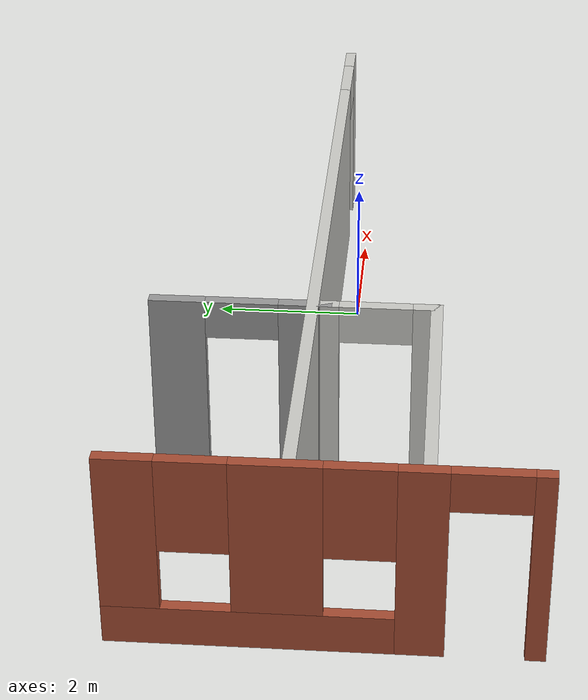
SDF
<sdf version="1.6">
 <model name="buildingMyHouse">
  <link name="Wall_34">
   <pose>-7.425 -0.022893 0 0 -0 1.5708</pose>
   <visual name="Wall_34_Visual_0">
    <pose>-2.38147 0 1.25 0 -0 0</pose>
    <geometry><box><size>0.237054 0.15 2.5</size></box></geometry>
    <material>
     <script><uri>file://media/materials/scripts/gazebo.material</uri><name>Gazebo/Bricks</name></script>
     <ambient>1 1 1 1</ambient>
     <shader type="pixel"/>
     <diffuse>1 1 1 1</diffuse>
     <specular>0.2 0.2 0.2 1</specular>
     <emissive>0 0 0 1</emissive>
    </material>
    <meta><layer>0</layer></meta>
   </visual>
   <visual name="Wall_34_Visual_1">
    <pose>-1.08246 0 1.25 0 -0 0</pose>
    <geometry><box><size>0.560967 0.15 2.5</size></box></geometry>
    <material>
     <script><uri>file://media/materials/scripts/gazebo.material</uri><name>Gazebo/Bricks</name></script>
     <ambient>1 1 1 1</ambient>
     <shader type="pixel"/>
     <diffuse>1 1 1 1</diffuse>
     <specular>0.2 0.2 0.2 1</specular>
     <emissive>0 0 0 1</emissive>
    </material>
    <meta><layer>0</layer></meta>
   </visual>
   <visual name="Wall_34_Visual_2">
    <pose>0.849011 0 0.25 0 -0 0</pose>
    <geometry><box><size>3.30198 0.15 0.5</size></box></geometry>
    <material>
     <script><uri>file://media/materials/scripts/gazebo.material</uri><name>Gazebo/Bricks</name></script>
     <ambient>1 1 1 1</ambient>
     <shader type="pixel"/>
     <diffuse>1 1 1 1</diffuse>
     <specular>0.2 0.2 0.2 1</specular>
     <emissive>0 0 0 1</emissive>
    </material>
    <meta><layer>0</layer></meta>
   </visual>
   <visual name="Wall_34_Visual_3">
    <pose>0.51168 0 1.5 0 -0 0</pose>
    <geometry><box><size>1.02732 0.15 2</size></box></geometry>
    <material>
     <script><uri>file://media/materials/scripts/gazebo.material</uri><name>Gazebo/Bricks</name></script>
     <ambient>1 1 1 1</ambient>
     <shader type="pixel"/>
     <diffuse>1 1 1 1</diffuse>
     <specular>0.2 0.2 0.2 1</specular>
     <emissive>0 0 0 1</emissive>
    </material>
    <meta><layer>0</layer></meta>
   </visual>
   <visual name="Wall_34_Visual_4">
    <pose>2.16267 0 1.5 0 -0 0</pose>
    <geometry><box><size>0.674661 0.15 2</size></box></geometry>
    <material>
     <script><uri>file://media/materials/scripts/gazebo.material</uri><name>Gazebo/Bricks</name></script>
     <ambient>1 1 1 1</ambient>
     <shader type="pixel"/>
     <diffuse>1 1 1 1</diffuse>
     <specular>0.2 0.2 0.2 1</specular>
     <emissive>0 0 0 1</emissive>
    </material>
    <meta><layer>0</layer></meta>
   </visual>
   <visual name="Wall_34_Visual_5">
    <pose>-0.401979 0 1.9 0 -0 0</pose>
    <geometry><box><size>0.8 0.15 1.2</size></box></geometry>
    <material>
     <script><uri>file://media/materials/scripts/gazebo.material</uri><name>Gazebo/Bricks</name></script>
     <ambient>1 1 1 1</ambient>
     <shader type="pixel"/>
     <diffuse>1 1 1 1</diffuse>
     <specular>0.2 0.2 0.2 1</specular>
     <emissive>0 0 0 1</emissive>
    </material>
    <meta><layer>0</layer></meta>
   </visual>
   <visual name="Wall_34_Visual_6">
    <pose>1.42534 0 1.9 0 -0 0</pose>
    <geometry><box><size>0.8 0.15 1.2</size></box></geometry>
    <material>
     <script><uri>file://media/materials/scripts/gazebo.material</uri><name>Gazebo/Bricks</name></script>
     <ambient>1 1 1 1</ambient>
     <shader type="pixel"/>
     <diffuse>1 1 1 1</diffuse>
     <specular>0.2 0.2 0.2 1</specular>
     <emissive>0 0 0 1</emissive>
    </material>
    <meta><layer>0</layer></meta>
   </visual>
   <visual name="Wall_34_Visual_7">
    <pose>-1.81295 0 2.25 0 -0 0</pose>
    <geometry><box><size>0.9 0.15 0.5</size></box></geometry>
    <material>
     <script><uri>file://media/materials/scripts/gazebo.material</uri><name>Gazebo/Bricks</name></script>
     <ambient>1 1 1 1</ambient>
     <shader type="pixel"/>
     <diffuse>1 1 1 1</diffuse>
     <specular>0.2 0.2 0.2 1</specular>
     <emissive>0 0 0 1</emissive>
    </material>
    <meta><layer>0</layer></meta>
   </visual>
   <collision name="Wall_34_Collision_0">
    <pose>-2.38147 0 1.25 0 -0 0</pose>
    <geometry><box><size>0.237054 0.15 2.5</size></box></geometry>
    <surface>
     <friction>
      <ode><mu>1</mu><mu2>1</mu2><fdir1>0 0 0</fdir1><slip1>0</slip1><slip2>0</slip2></ode>
      <torsional>
       <coefficient>1</coefficient>
       <patch_radius>0</patch_radius>
       <surface_radius>0</surface_radius>
       <use_patch_radius>1</use_patch_radius>
       <ode><slip>0</slip></ode>
      </torsional>
     </friction>
     <bounce><restitution_coefficient>0</restitution_coefficient><threshold>1e+06</threshold></bounce>
     <contact>
      <collide_without_contact>0</collide_without_contact>
      <collide_without_contact_bitmask>1</collide_without_contact_bitmask>
      <collide_bitmask>1</collide_bitmask>
      <ode>
       <soft_cfm>0</soft_cfm>
       <soft_erp>0.2</soft_erp>
       <kp>1e+13</kp>
       <kd>1</kd>
       <max_vel>0.01</max_vel>
       <min_depth>0</min_depth>
      </ode>
      <bullet>
       <split_impulse>1</split_impulse>
       <split_impulse_penetration_threshold>-0.01</split_impulse_penetration_threshold>
       <soft_cfm>0</soft_cfm>
       <soft_erp>0.2</soft_erp>
       <kp>1e+13</kp>
       <kd>1</kd>
      </bullet>
     </contact>
    </surface>
   </collision>
   <collision name="Wall_34_Collision_1">
    <pose>-1.08246 0 1.25 0 -0 0</pose>
    <geometry><box><size>0.560967 0.15 2.5</size></box></geometry>
    <surface>
     <friction>
      <ode><mu>1</mu><mu2>1</mu2><fdir1>0 0 0</fdir1><slip1>0</slip1><slip2>0</slip2></ode>
      <torsional>
       <coefficient>1</coefficient>
       <patch_radius>0</patch_radius>
       <surface_radius>0</surface_radius>
       <use_patch_radius>1</use_patch_radius>
       <ode><slip>0</slip></ode>
      </torsional>
     </friction>
     <bounce><restitution_coefficient>0</restitution_coefficient><threshold>1e+06</threshold></bounce>
     <contact>
      <collide_without_contact>0</collide_without_contact>
      <collide_without_contact_bitmask>1</collide_without_contact_bitmask>
      <collide_bitmask>1</collide_bitmask>
      <ode>
       <soft_cfm>0</soft_cfm>
       <soft_erp>0.2</soft_erp>
       <kp>1e+13</kp>
       <kd>1</kd>
       <max_vel>0.01</max_vel>
       <min_depth>0</min_depth>
      </ode>
      <bullet>
       <split_impulse>1</split_impulse>
       <split_impulse_penetration_threshold>-0.01</split_impulse_penetration_threshold>
       <soft_cfm>0</soft_cfm>
       <soft_erp>0.2</soft_erp>
       <kp>1e+13</kp>
       <kd>1</kd>
      </bullet>
     </contact>
    </surface>
   </collision>
   <collision name="Wall_34_Collision_2">
    <pose>0.849011 0 0.25 0 -0 0</pose>
    <geometry><box><size>3.30198 0.15 0.5</size></box></geometry>
    <surface>
     <friction>
      <ode><mu>1</mu><mu2>1</mu2><fdir1>0 0 0</fdir1><slip1>0</slip1><slip2>0</slip2></ode>
      <torsional>
       <coefficient>1</coefficient>
       <patch_radius>0</patch_radius>
       <surface_radius>0</surface_radius>
       <use_patch_radius>1</use_patch_radius>
       <ode><slip>0</slip></ode>
      </torsional>
     </friction>
     <bounce><restitution_coefficient>0</restitution_coefficient><threshold>1e+06</threshold></bounce>
     <contact>
      <collide_without_contact>0</collide_without_contact>
      <collide_without_contact_bitmask>1</collide_without_contact_bitmask>
      <collide_bitmask>1</collide_bitmask>
      <ode>
       <soft_cfm>0</soft_cfm>
       <soft_erp>0.2</soft_erp>
       <kp>1e+13</kp>
       <kd>1</kd>
       <max_vel>0.01</max_vel>
       <min_depth>0</min_depth>
      </ode>
      <bullet>
       <split_impulse>1</split_impulse>
       <split_impulse_penetration_threshold>-0.01</split_impulse_penetration_threshold>
       <soft_cfm>0</soft_cfm>
       <soft_erp>0.2</soft_erp>
       <kp>1e+13</kp>
       <kd>1</kd>
      </bullet>
     </contact>
    </surface>
   </collision>
   <collision name="Wall_34_Collision_3">
    <pose>0.51168 0 1.5 0 -0 0</pose>
    <geometry><box><size>1.02732 0.15 2</size></box></geometry>
    <surface>
     <friction>
      <ode><mu>1</mu><mu2>1</mu2><fdir1>0 0 0</fdir1><slip1>0</slip1><slip2>0</slip2></ode>
      <torsional>
       <coefficient>1</coefficient>
       <patch_radius>0</patch_radius>
       <surface_radius>0</surface_radius>
       <use_patch_radius>1</use_patch_radius>
       <ode><slip>0</slip></ode>
      </torsional>
     </friction>
     <bounce><restitution_coefficient>0</restitution_coefficient><threshold>1e+06</threshold></bounce>
     <contact>
      <collide_without_contact>0</collide_without_contact>
      <collide_without_contact_bitmask>1</collide_without_contact_bitmask>
      <collide_bitmask>1</collide_bitmask>
      <ode>
       <soft_cfm>0</soft_cfm>
       <soft_erp>0.2</soft_erp>
       <kp>1e+13</kp>
       <kd>1</kd>
       <max_vel>0.01</max_vel>
       <min_depth>0</min_depth>
      </ode>
      <bullet>
       <split_impulse>1</split_impulse>
       <split_impulse_penetration_threshold>-0.01</split_impulse_penetration_threshold>
       <soft_cfm>0</soft_cfm>
       <soft_erp>0.2</soft_erp>
       <kp>1e+13</kp>
       <kd>1</kd>
      </bullet>
     </contact>
    </surface>
   </collision>
   <collision name="Wall_34_Collision_4">
    <pose>2.16267 0 1.5 0 -0 0</pose>
    <geometry><box><size>0.674661 0.15 2</size></box></geometry>
    <surface>
     <friction>
      <ode><mu>1</mu><mu2>1</mu2><fdir1>0 0 0</fdir1><slip1>0</slip1><slip2>0</slip2></ode>
      <torsional>
       <coefficient>1</coefficient>
       <patch_radius>0</patch_radius>
       <surface_radius>0</surface_radius>
       <use_patch_radius>1</use_patch_radius>
       <ode><slip>0</slip></ode>
      </torsional>
     </friction>
     <bounce><restitution_coefficient>0</restitution_coefficient><threshold>1e+06</threshold></bounce>
     <contact>
      <collide_without_contact>0</collide_without_contact>
      <collide_without_contact_bitmask>1</collide_without_contact_bitmask>
      <collide_bitmask>1</collide_bitmask>
      <ode>
       <soft_cfm>0</soft_cfm>
       <soft_erp>0.2</soft_erp>
       <kp>1e+13</kp>
       <kd>1</kd>
       <max_vel>0.01</max_vel>
       <min_depth>0</min_depth>
      </ode>
      <bullet>
       <split_impulse>1</split_impulse>
       <split_impulse_penetration_threshold>-0.01</split_impulse_penetration_threshold>
       <soft_cfm>0</soft_cfm>
       <soft_erp>0.2</soft_erp>
       <kp>1e+13</kp>
       <kd>1</kd>
      </bullet>
     </contact>
    </surface>
   </collision>
   <collision name="Wall_34_Collision_5">
    <pose>-0.401979 0 1.9 0 -0 0</pose>
    <geometry><box><size>0.8 0.15 1.2</size></box></geometry>
    <surface>
     <friction>
      <ode><mu>1</mu><mu2>1</mu2><fdir1>0 0 0</fdir1><slip1>0</slip1><slip2>0</slip2></ode>
      <torsional>
       <coefficient>1</coefficient>
       <patch_radius>0</patch_radius>
       <surface_radius>0</surface_radius>
       <use_patch_radius>1</use_patch_radius>
       <ode><slip>0</slip></ode>
      </torsional>
     </friction>
     <bounce><restitution_coefficient>0</restitution_coefficient><threshold>1e+06</threshold></bounce>
     <contact>
      <collide_without_contact>0</collide_without_contact>
      <collide_without_contact_bitmask>1</collide_without_contact_bitmask>
      <collide_bitmask>1</collide_bitmask>
      <ode>
       <soft_cfm>0</soft_cfm>
       <soft_erp>0.2</soft_erp>
       <kp>1e+13</kp>
       <kd>1</kd>
       <max_vel>0.01</max_vel>
       <min_depth>0</min_depth>
      </ode>
      <bullet>
       <split_impulse>1</split_impulse>
       <split_impulse_penetration_threshold>-0.01</split_impulse_penetration_threshold>
       <soft_cfm>0</soft_cfm>
       <soft_erp>0.2</soft_erp>
       <kp>1e+13</kp>
       <kd>1</kd>
      </bullet>
     </contact>
    </surface>
   </collision>
   <collision name="Wall_34_Collision_6">
    <pose>1.42534 0 1.9 0 -0 0</pose>
    <geometry><box><size>0.8 0.15 1.2</size></box></geometry>
    <surface>
     <friction>
      <ode><mu>1</mu><mu2>1</mu2><fdir1>0 0 0</fdir1><slip1>0</slip1><slip2>0</slip2></ode>
      <torsional>
       <coefficient>1</coefficient>
       <patch_radius>0</patch_radius>
       <surface_radius>0</surface_radius>
       <use_patch_radius>1</use_patch_radius>
       <ode><slip>0</slip></ode>
      </torsional>
     </friction>
     <bounce><restitution_coefficient>0</restitution_coefficient><threshold>1e+06</threshold></bounce>
     <contact>
      <collide_without_contact>0</collide_without_contact>
      <collide_without_contact_bitmask>1</collide_without_contact_bitmask>
      <collide_bitmask>1</collide_bitmask>
      <ode>
       <soft_cfm>0</soft_cfm>
       <soft_erp>0.2</soft_erp>
       <kp>1e+13</kp>
       <kd>1</kd>
       <max_vel>0.01</max_vel>
       <min_depth>0</min_depth>
      </ode>
      <bullet>
       <split_impulse>1</split_impulse>
       <split_impulse_penetration_threshold>-0.01</split_impulse_penetration_threshold>
       <soft_cfm>0</soft_cfm>
       <soft_erp>0.2</soft_erp>
       <kp>1e+13</kp>
       <kd>1</kd>
      </bullet>
     </contact>
    </surface>
   </collision>
   <collision name="Wall_34_Collision_7">
    <pose>-1.81295 0 2.25 0 -0 0</pose>
    <geometry><box><size>0.9 0.15 0.5</size></box></geometry>
    <surface>
     <friction>
      <ode><mu>1</mu><mu2>1</mu2><fdir1>0 0 0</fdir1><slip1>0</slip1><slip2>0</slip2></ode>
      <torsional>
       <coefficient>1</coefficient>
       <patch_radius>0</patch_radius>
       <surface_radius>0</surface_radius>
       <use_patch_radius>1</use_patch_radius>
       <ode><slip>0</slip></ode>
      </torsional>
     </friction>
     <bounce><restitution_coefficient>0</restitution_coefficient><threshold>1e+06</threshold></bounce>
     <contact>
      <collide_without_contact>0</collide_without_contact>
      <collide_without_contact_bitmask>1</collide_without_contact_bitmask>
      <collide_bitmask>1</collide_bitmask>
      <ode>
       <soft_cfm>0</soft_cfm>
       <soft_erp>0.2</soft_erp>
       <kp>1e+13</kp>
       <kd>1</kd>
       <max_vel>0.01</max_vel>
       <min_depth>0</min_depth>
      </ode>
      <bullet>
       <split_impulse>1</split_impulse>
       <split_impulse_penetration_threshold>-0.01</split_impulse_penetration_threshold>
       <soft_cfm>0</soft_cfm>
       <soft_erp>0.2</soft_erp>
       <kp>1e+13</kp>
       <kd>1</kd>
      </bullet>
     </contact>
    </surface>
   </collision>
  </link>
  <link name="Wall_40">
   <pose>-1.80848 0.347893 0 0 -0 0</pose>
   <visual name="Wall_40_Visual_0">
    <pose>-0.709013 0 1.25 0 -0 0</pose>
    <geometry><box><size>9.83197 0.15 2.5</size></box></geometry>
    <material>
     <script><uri>file://media/materials/scripts/gazebo.material</uri><name>Gazebo/CeilingTiled</name></script>
     <ambient>1 1 1 1</ambient>
     <shader type="pixel"/>
     <diffuse>1 1 1 1</diffuse>
     <specular>0 0 0 1</specular>
     <emissive>0 0 0 1</emissive>
    </material>
    <meta><layer>0</layer></meta>
   </visual>
   <visual name="Wall_40_Visual_1">
    <pose>5.36599 0 1.25 0 -0 0</pose>
    <geometry><box><size>0.518027 0.15 2.5</size></box></geometry>
    <material>
     <script><uri>file://media/materials/scripts/gazebo.material</uri><name>Gazebo/CeilingTiled</name></script>
     <ambient>1 1 1 1</ambient>
     <shader type="pixel"/>
     <diffuse>1 1 1 1</diffuse>
     <specular>0 0 0 1</specular>
     <emissive>0 0 0 1</emissive>
    </material>
    <meta><layer>0</layer></meta>
   </visual>
   <visual name="Wall_40_Visual_2">
    <pose>4.65697 0 2.25 0 -0 0</pose>
    <geometry><box><size>0.9 0.15 0.5</size></box></geometry>
    <material>
     <script><uri>file://media/materials/scripts/gazebo.material</uri><name>Gazebo/CeilingTiled</name></script>
     <ambient>1 1 1 1</ambient>
     <shader type="pixel"/>
     <diffuse>1 1 1 1</diffuse>
     <specular>0 0 0 1</specular>
     <emissive>0 0 0 1</emissive>
    </material>
    <meta><layer>0</layer></meta>
   </visual>
   <collision name="Wall_40_Collision_0">
    <pose>-0.709013 0 1.25 0 -0 0</pose>
    <geometry><box><size>9.83197 0.15 2.5</size></box></geometry>
    <surface>
     <friction>
      <ode><mu>1</mu><mu2>1</mu2><fdir1>0 0 0</fdir1><slip1>0</slip1><slip2>0</slip2></ode>
      <torsional>
       <coefficient>1</coefficient>
       <patch_radius>0</patch_radius>
       <surface_radius>0</surface_radius>
       <use_patch_radius>1</use_patch_radius>
       <ode><slip>0</slip></ode>
      </torsional>
     </friction>
     <bounce><restitution_coefficient>0</restitution_coefficient><threshold>1e+06</threshold></bounce>
     <contact>
      <collide_without_contact>0</collide_without_contact>
      <collide_without_contact_bitmask>1</collide_without_contact_bitmask>
      <collide_bitmask>1</collide_bitmask>
      <ode>
       <soft_cfm>0</soft_cfm>
       <soft_erp>0.2</soft_erp>
       <kp>1e+13</kp>
       <kd>1</kd>
       <max_vel>0.01</max_vel>
       <min_depth>0</min_depth>
      </ode>
      <bullet>
       <split_impulse>1</split_impulse>
       <split_impulse_penetration_threshold>-0.01</split_impulse_penetration_threshold>
       <soft_cfm>0</soft_cfm>
       <soft_erp>0.2</soft_erp>
       <kp>1e+13</kp>
       <kd>1</kd>
      </bullet>
     </contact>
    </surface>
   </collision>
   <collision name="Wall_40_Collision_1">
    <pose>5.36599 0 1.25 0 -0 0</pose>
    <geometry><box><size>0.518027 0.15 2.5</size></box></geometry>
    <surface>
     <friction>
      <ode><mu>1</mu><mu2>1</mu2><fdir1>0 0 0</fdir1><slip1>0</slip1><slip2>0</slip2></ode>
      <torsional>
       <coefficient>1</coefficient>
       <patch_radius>0</patch_radius>
       <surface_radius>0</surface_radius>
       <use_patch_radius>1</use_patch_radius>
       <ode><slip>0</slip></ode>
      </torsional>
     </friction>
     <bounce><restitution_coefficient>0</restitution_coefficient><threshold>1e+06</threshold></bounce>
     <contact>
      <collide_without_contact>0</collide_without_contact>
      <collide_without_contact_bitmask>1</collide_without_contact_bitmask>
      <collide_bitmask>1</collide_bitmask>
      <ode>
       <soft_cfm>0</soft_cfm>
       <soft_erp>0.2</soft_erp>
       <kp>1e+13</kp>
       <kd>1</kd>
       <max_vel>0.01</max_vel>
       <min_depth>0</min_depth>
      </ode>
      <bullet>
       <split_impulse>1</split_impulse>
       <split_impulse_penetration_threshold>-0.01</split_impulse_penetration_threshold>
       <soft_cfm>0</soft_cfm>
       <soft_erp>0.2</soft_erp>
       <kp>1e+13</kp>
       <kd>1</kd>
      </bullet>
     </contact>
    </surface>
   </collision>
   <collision name="Wall_40_Collision_2">
    <pose>4.65697 0 2.25 0 -0 0</pose>
    <geometry><box><size>0.9 0.15 0.5</size></box></geometry>
    <surface>
     <friction>
      <ode><mu>1</mu><mu2>1</mu2><fdir1>0 0 0</fdir1><slip1>0</slip1><slip2>0</slip2></ode>
      <torsional>
       <coefficient>1</coefficient>
       <patch_radius>0</patch_radius>
       <surface_radius>0</surface_radius>
       <use_patch_radius>1</use_patch_radius>
       <ode><slip>0</slip></ode>
      </torsional>
     </friction>
     <bounce><restitution_coefficient>0</restitution_coefficient><threshold>1e+06</threshold></bounce>
     <contact>
      <collide_without_contact>0</collide_without_contact>
      <collide_without_contact_bitmask>1</collide_without_contact_bitmask>
      <collide_bitmask>1</collide_bitmask>
      <ode>
       <soft_cfm>0</soft_cfm>
       <soft_erp>0.2</soft_erp>
       <kp>1e+13</kp>
       <kd>1</kd>
       <max_vel>0.01</max_vel>
       <min_depth>0</min_depth>
      </ode>
      <bullet>
       <split_impulse>1</split_impulse>
       <split_impulse_penetration_threshold>-0.01</split_impulse_penetration_threshold>
       <soft_cfm>0</soft_cfm>
       <soft_erp>0.2</soft_erp>
       <kp>1e+13</kp>
       <kd>1</kd>
      </bullet>
     </contact>
    </surface>
   </collision>
  </link>
  <link name="Wall_45">
   <pose>-5.70023 -1.16505 0 0 -0 0</pose>
   <visual name="Wall_45_Visual">
    <pose>0 0 1.25 0 -0 0</pose>
    <geometry><box><size>3.5 0.15 2.5</size></box></geometry>
    <material>
     <script><uri>file://media/materials/scripts/gazebo.material</uri><name>Gazebo/CeilingTiled</name></script>
     <ambient>1 1 1 1</ambient>
     <shader type="pixel"/>
     <diffuse>1 1 1 1</diffuse>
     <specular>0 0 0 1</specular>
     <emissive>0 0 0 1</emissive>
    </material>
    <meta><layer>0</layer></meta>
   </visual>
   <collision name="Wall_45_Collision">
    <pose>0 0 1.25 0 -0 0</pose>
    <geometry><box><size>3.5 0.15 2.5</size></box></geometry>
    <surface>
     <friction>
      <ode><mu>1</mu><mu2>1</mu2><fdir1>0 0 0</fdir1><slip1>0</slip1><slip2>0</slip2></ode>
      <torsional>
       <coefficient>1</coefficient>
       <patch_radius>0</patch_radius>
       <surface_radius>0</surface_radius>
       <use_patch_radius>1</use_patch_radius>
       <ode><slip>0</slip></ode>
      </torsional>
     </friction>
     <bounce><restitution_coefficient>0</restitution_coefficient><threshold>1e+06</threshold></bounce>
     <contact>
      <collide_without_contact>0</collide_without_contact>
      <collide_without_contact_bitmask>1</collide_without_contact_bitmask>
      <collide_bitmask>1</collide_bitmask>
      <ode>
       <soft_cfm>0</soft_cfm>
       <soft_erp>0.2</soft_erp>
       <kp>1e+13</kp>
       <kd>1</kd>
       <max_vel>0.01</max_vel>
       <min_depth>0</min_depth>
      </ode>
      <bullet>
       <split_impulse>1</split_impulse>
       <split_impulse_penetration_threshold>-0.01</split_impulse_penetration_threshold>
       <soft_cfm>0</soft_cfm>
       <soft_erp>0.2</soft_erp>
       <kp>1e+13</kp>
       <kd>1</kd>
      </bullet>
     </contact>
    </surface>
   </collision>
  </link>
  <link name="Wall_46">
   <pose>-4.02523 -0.490052 0 0 -0 1.5708</pose>
   <inertial>
    <mass>1</mass>
    <inertia><ixx>1</ixx><ixy>0</ixy><ixz>0</ixz><iyy>1</iyy><iyz>0</iyz><izz>1</izz></inertia>
   </inertial>
   <visual name="Wall_46_Visual_0">
    <pose>-0.56741 0 1.25 0 -0 0</pose>
    <geometry><box><size>0.365179 0.15 2.5</size></box></geometry>
    <material>
     <script><uri>file://media/materials/scripts/gazebo.material</uri><name>Gazebo/CeilingTiled</name></script>
     <ambient>0.9 0 0 1</ambient>
     <shader type="pixel"><normal_map>__default__</normal_map></shader>
     <diffuse>0.9 0 0 1</diffuse>
     <specular>0.9 0 0 1</specular>
     <emissive>0 0 0 1</emissive>
    </material>
    <meta><layer>0</layer></meta>
   </visual>
   <visual name="Wall_46_Visual_1">
    <pose>0.63259 0 1.25 0 -0 0</pose>
    <geometry><box><size>0.234821 0.15 2.5</size></box></geometry>
    <material>
     <script><uri>file://media/materials/scripts/gazebo.material</uri><name>Gazebo/CeilingTiled</name></script>
     <ambient>0.9 0 0 1</ambient>
     <shader type="pixel"><normal_map>__default__</normal_map></shader>
     <diffuse>0.9 0 0 1</diffuse>
     <specular>0 0 0 1</specular>
     <emissive>0 0 0 1</emissive>
    </material>
    <meta><layer>0</layer></meta>
   </visual>
   <visual name="Wall_46_Visual_2">
    <pose>0.065179 0 2.25 0 -0 0</pose>
    <geometry><box><size>0.9 0.15 0.5</size></box></geometry>
    <material>
     <script><uri>file://media/materials/scripts/gazebo.material</uri><name>Gazebo/CeilingTiled</name></script>
     <ambient>0.9 0 0 1</ambient>
     <shader type="pixel"><normal_map>__default__</normal_map></shader>
     <diffuse>0.9 0 0 1</diffuse>
     <specular>0 0 0 1</specular>
     <emissive>0 0 0 1</emissive>
    </material>
    <meta><layer>0</layer></meta>
   </visual>
   <collision name="Wall_46_Collision_2">
    <pose>0.065179 0 2.25 0 -0 0</pose>
    <geometry><box><size>0.9 0.15 0.5</size></box></geometry>
    <surface>
     <friction>
      <ode><mu>1</mu><mu2>1</mu2><fdir1>0 0 0</fdir1><slip1>0</slip1><slip2>0</slip2></ode>
      <torsional>
       <coefficient>1</coefficient>
       <patch_radius>0</patch_radius>
       <surface_radius>0</surface_radius>
       <use_patch_radius>1</use_patch_radius>
       <ode><slip>0</slip></ode>
      </torsional>
     </friction>
     <bounce><restitution_coefficient>0</restitution_coefficient><threshold>1e+06</threshold></bounce>
     <contact>
      <collide_without_contact>0</collide_without_contact>
      <collide_without_contact_bitmask>1</collide_without_contact_bitmask>
      <collide_bitmask>1</collide_bitmask>
      <ode>
       <soft_cfm>0</soft_cfm>
       <soft_erp>0.2</soft_erp>
       <kp>1e+13</kp>
       <kd>1</kd>
       <max_vel>0.01</max_vel>
       <min_depth>0</min_depth>
      </ode>
      <bullet>
       <split_impulse>1</split_impulse>
       <split_impulse_penetration_threshold>-0.01</split_impulse_penetration_threshold>
       <soft_cfm>0</soft_cfm>
       <soft_erp>0.2</soft_erp>
       <kp>1e+13</kp>
       <kd>1</kd>
      </bullet>
     </contact>
    </surface>
   </collision>
   <collision name="Wall_46_Collision_0">
    <pose>-0.56741 0 1.25 0 -0 0</pose>
    <geometry><box><size>0.365179 0.15 2.5</size></box></geometry>
    <surface>
     <friction>
      <ode><mu>1</mu><mu2>1</mu2><fdir1>0 0 0</fdir1><slip1>0</slip1><slip2>0</slip2></ode>
      <torsional>
       <coefficient>1</coefficient>
       <patch_radius>0</patch_radius>
       <surface_radius>0</surface_radius>
       <use_patch_radius>1</use_patch_radius>
       <ode><slip>0</slip></ode>
      </torsional>
     </friction>
     <bounce><restitution_coefficient>0</restitution_coefficient><threshold>1e+06</threshold></bounce>
     <contact>
      <collide_without_contact>0</collide_without_contact>
      <collide_without_contact_bitmask>1</collide_without_contact_bitmask>
      <collide_bitmask>1</collide_bitmask>
      <ode>
       <soft_cfm>0</soft_cfm>
       <soft_erp>0.2</soft_erp>
       <kp>1e+13</kp>
       <kd>1</kd>
       <max_vel>0.01</max_vel>
       <min_depth>0</min_depth>
      </ode>
      <bullet>
       <split_impulse>1</split_impulse>
       <split_impulse_penetration_threshold>-0.01</split_impulse_penetration_threshold>
       <soft_cfm>0</soft_cfm>
       <soft_erp>0.2</soft_erp>
       <kp>1e+13</kp>
       <kd>1</kd>
      </bullet>
     </contact>
    </surface>
   </collision>
   <collision name="Wall_46_Collision_1">
    <pose>0.63259 0 1.25 0 -0 0</pose>
    <geometry><box><size>0.234821 0.15 2.5</size></box></geometry>
    <surface>
     <friction>
      <ode><mu>1</mu><mu2>1</mu2><fdir1>0 0 0</fdir1><slip1>0</slip1><slip2>0</slip2></ode>
      <torsional>
       <coefficient>1</coefficient>
       <patch_radius>0</patch_radius>
       <surface_radius>0</surface_radius>
       <use_patch_radius>1</use_patch_radius>
       <ode><slip>0</slip></ode>
      </torsional>
     </friction>
     <bounce><restitution_coefficient>0</restitution_coefficient><threshold>1e+06</threshold></bounce>
     <contact>
      <collide_without_contact>0</collide_without_contact>
      <collide_without_contact_bitmask>1</collide_without_contact_bitmask>
      <collide_bitmask>1</collide_bitmask>
      <ode>
       <soft_cfm>0</soft_cfm>
       <soft_erp>0.2</soft_erp>
       <kp>1e+13</kp>
       <kd>1</kd>
       <max_vel>0.01</max_vel>
       <min_depth>0</min_depth>
      </ode>
      <bullet>
       <split_impulse>1</split_impulse>
       <split_impulse_penetration_threshold>-0.01</split_impulse_penetration_threshold>
       <soft_cfm>0</soft_cfm>
       <soft_erp>0.2</soft_erp>
       <kp>1e+13</kp>
       <kd>1</kd>
      </bullet>
     </contact>
    </surface>
   </collision>
  </link>
  <link name="Wall_47">
   <pose>-4.02523 1.23495 0 0 -0 1.5708</pose>
   <visual name="Wall_47_Visual_0">
    <pose>-0.796274 0 1.25 0 -0 0</pose>
    <geometry><box><size>0.657453 0.15 2.5</size></box></geometry>
    <material>
     <script><uri>file://media/materials/scripts/gazebo.material</uri><name>Gazebo/Grey</name></script>
     <ambient>1 1 1 1</ambient>
     <shader type="pixel"/>
     <diffuse>0.7 0.7 0.7 1</diffuse>
     <specular>0.01 0.01 0.01 1</specular>
     <emissive>0 0 0 1</emissive>
    </material>
    <meta><layer>0</layer></meta>
   </visual>
   <visual name="Wall_47_Visual_1">
    <pose>0.778726 0 1.25 0 -0 0</pose>
    <geometry><box><size>0.692547 0.15 2.5</size></box></geometry>
    <material>
     <script><uri>file://media/materials/scripts/gazebo.material</uri><name>Gazebo/Grey</name></script>
     <ambient>1 1 1 1</ambient>
     <shader type="pixel"/>
     <diffuse>0.7 0.7 0.7 1</diffuse>
     <specular>0.01 0.01 0.01 1</specular>
     <emissive>0 0 0 1</emissive>
    </material>
    <meta><layer>0</layer></meta>
   </visual>
   <visual name="Wall_47_Visual_2">
    <pose>-0.017547 0 2.25 0 -0 0</pose>
    <geometry><box><size>0.9 0.15 0.5</size></box></geometry>
    <material>
     <script><uri>file://media/materials/scripts/gazebo.material</uri><name>Gazebo/Grey</name></script>
     <ambient>1 1 1 1</ambient>
     <shader type="pixel"/>
     <diffuse>0.7 0.7 0.7 1</diffuse>
     <specular>0.01 0.01 0.01 1</specular>
     <emissive>0 0 0 1</emissive>
    </material>
    <meta><layer>0</layer></meta>
   </visual>
   <collision name="Wall_47_Collision_0">
    <pose>-0.796274 0 1.25 0 -0 0</pose>
    <geometry><box><size>0.657453 0.15 2.5</size></box></geometry>
    <surface>
     <friction>
      <ode><mu>1</mu><mu2>1</mu2><fdir1>0 0 0</fdir1><slip1>0</slip1><slip2>0</slip2></ode>
      <torsional>
       <coefficient>1</coefficient>
       <patch_radius>0</patch_radius>
       <surface_radius>0</surface_radius>
       <use_patch_radius>1</use_patch_radius>
       <ode><slip>0</slip></ode>
      </torsional>
     </friction>
     <bounce><restitution_coefficient>0</restitution_coefficient><threshold>1e+06</threshold></bounce>
     <contact>
      <collide_without_contact>0</collide_without_contact>
      <collide_without_contact_bitmask>1</collide_without_contact_bitmask>
      <collide_bitmask>1</collide_bitmask>
      <ode>
       <soft_cfm>0</soft_cfm>
       <soft_erp>0.2</soft_erp>
       <kp>1e+13</kp>
       <kd>1</kd>
       <max_vel>0.01</max_vel>
       <min_depth>0</min_depth>
      </ode>
      <bullet>
       <split_impulse>1</split_impulse>
       <split_impulse_penetration_threshold>-0.01</split_impulse_penetration_threshold>
       <soft_cfm>0</soft_cfm>
       <soft_erp>0.2</soft_erp>
       <kp>1e+13</kp>
       <kd>1</kd>
      </bullet>
     </contact>
    </surface>
   </collision>
   <collision name="Wall_47_Collision_1">
    <pose>0.778726 0 1.25 0 -0 0</pose>
    <geometry><box><size>0.692547 0.15 2.5</size></box></geometry>
    <surface>
     <friction>
      <ode><mu>1</mu><mu2>1</mu2><fdir1>0 0 0</fdir1><slip1>0</slip1><slip2>0</slip2></ode>
      <torsional>
       <coefficient>1</coefficient>
       <patch_radius>0</patch_radius>
       <surface_radius>0</surface_radius>
       <use_patch_radius>1</use_patch_radius>
       <ode><slip>0</slip></ode>
      </torsional>
     </friction>
     <bounce><restitution_coefficient>0</restitution_coefficient><threshold>1e+06</threshold></bounce>
     <contact>
      <collide_without_contact>0</collide_without_contact>
      <collide_without_contact_bitmask>1</collide_without_contact_bitmask>
      <collide_bitmask>1</collide_bitmask>
      <ode>
       <soft_cfm>0</soft_cfm>
       <soft_erp>0.2</soft_erp>
       <kp>1e+13</kp>
       <kd>1</kd>
       <max_vel>0.01</max_vel>
       <min_depth>0</min_depth>
      </ode>
      <bullet>
       <split_impulse>1</split_impulse>
       <split_impulse_penetration_threshold>-0.01</split_impulse_penetration_threshold>
       <soft_cfm>0</soft_cfm>
       <soft_erp>0.2</soft_erp>
       <kp>1e+13</kp>
       <kd>1</kd>
      </bullet>
     </contact>
    </surface>
   </collision>
   <collision name="Wall_47_Collision_2">
    <pose>-0.017547 0 2.25 0 -0 0</pose>
    <geometry><box><size>0.9 0.15 0.5</size></box></geometry>
    <surface>
     <friction>
      <ode><mu>1</mu><mu2>1</mu2><fdir1>0 0 0</fdir1><slip1>0</slip1><slip2>0</slip2></ode>
      <torsional>
       <coefficient>1</coefficient>
       <patch_radius>0</patch_radius>
       <surface_radius>0</surface_radius>
       <use_patch_radius>1</use_patch_radius>
       <ode><slip>0</slip></ode>
      </torsional>
     </friction>
     <bounce><restitution_coefficient>0</restitution_coefficient><threshold>1e+06</threshold></bounce>
     <contact>
      <collide_without_contact>0</collide_without_contact>
      <collide_without_contact_bitmask>1</collide_without_contact_bitmask>
      <collide_bitmask>1</collide_bitmask>
      <ode>
       <soft_cfm>0</soft_cfm>
       <soft_erp>0.2</soft_erp>
       <kp>1e+13</kp>
       <kd>1</kd>
       <max_vel>0.01</max_vel>
       <min_depth>0</min_depth>
      </ode>
      <bullet>
       <split_impulse>1</split_impulse>
       <split_impulse_penetration_threshold>-0.01</split_impulse_penetration_threshold>
       <soft_cfm>0</soft_cfm>
       <soft_erp>0.2</soft_erp>
       <kp>1e+13</kp>
       <kd>1</kd>
      </bullet>
     </contact>
    </surface>
   </collision>
  </link>
  <static>1</static>
 </model>
</sdf>
